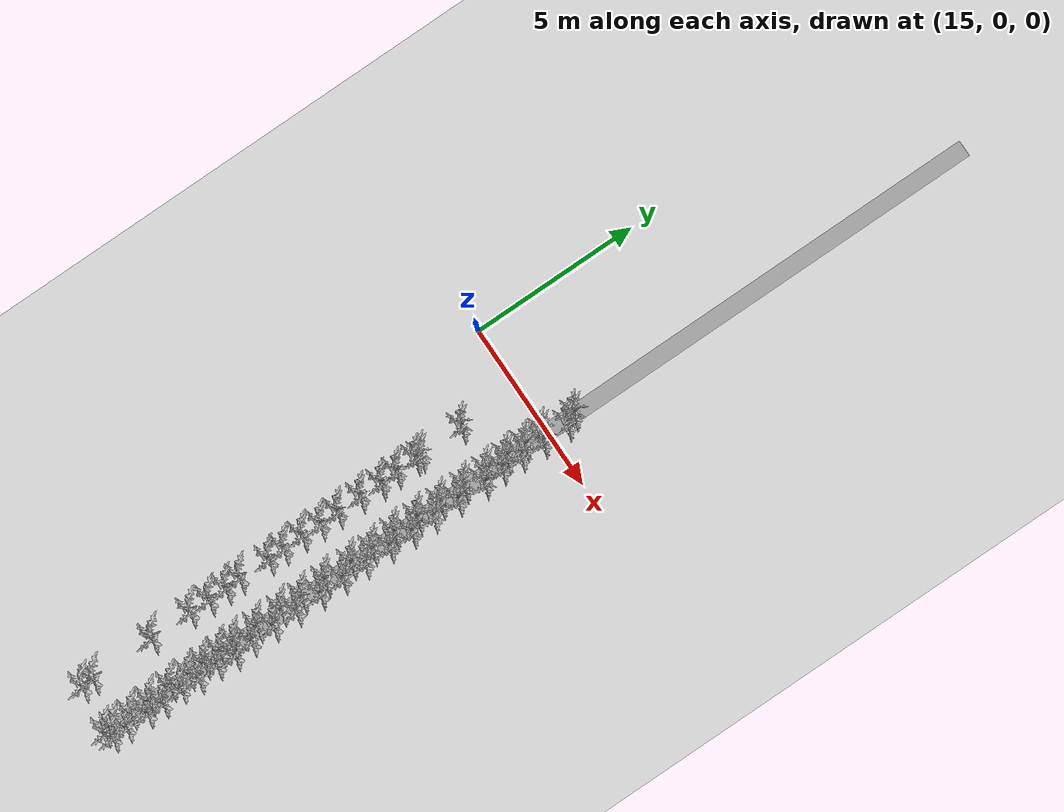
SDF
<sdf version="1.6">
 <world name="default">
  <model name="ground_plane">
   <static>1</static>
   <link name="link">
    <collision name="collision">
     <geometry><plane><normal>0 0 1</normal><size>100 100</size></plane></geometry>
     <surface>
      <contact><collide_bitmask>65535</collide_bitmask></contact>
      <friction><ode><mu>100</mu><mu2>50</mu2></ode></friction>
     </surface>
    </collision>
    <visual name="visual">
     <cast_shadows>0</cast_shadows>
     <geometry><plane><normal>0 0 1</normal><size>100 100</size></plane></geometry>
     <material>
      <script><uri>file://media/materials/scripts/gazebo.material</uri><name>Gazebo/Grey</name></script>
     </material>
    </visual>
   </link>
  </model>
  <model name="plant_base_clone_clone_0_clone_clone">
   <link name="link">
    <inertial>
     <mass>1</mass>
     <inertia>
      <ixx>0.166667</ixx>
      <ixy>0</ixy>
      <ixz>0</ixz>
      <iyy>0.166667</iyy>
      <iyz>0</iyz>
      <izz>0.166667</izz>
     </inertia>
    </inertial>
    <visual name="visual">
     <geometry><box><size>0.484753 27.8593 0.235695</size></box></geometry>
     <material>
      <script><name>Gazebo/Grey</name><uri>file://media/materials/scripts/gazebo.material</uri></script>
     </material>
    </visual>
    <collision name="collision">
     <geometry><box><size>0.484753 27.8593 0.235695</size></box></geometry>
     <surface>
      <friction>
       <ode><mu>1</mu><mu2>1</mu2><fdir1>0 0 0</fdir1><slip1>0</slip1><slip2>0</slip2></ode>
       <torsional>
        <coefficient>1</coefficient>
        <patch_radius>0</patch_radius>
        <surface_radius>0</surface_radius>
        <use_patch_radius>1</use_patch_radius>
        <ode><slip>0</slip></ode>
       </torsional>
      </friction>
      <bounce><restitution_coefficient>0</restitution_coefficient><threshold>1e+06</threshold></bounce>
      <contact>
       <collide_without_contact>0</collide_without_contact>
       <collide_without_contact_bitmask>1</collide_without_contact_bitmask>
       <collide_bitmask>1</collide_bitmask>
       <ode>
        <soft_cfm>0</soft_cfm>
        <soft_erp>0.2</soft_erp>
        <kp>1e+13</kp>
        <kd>1</kd>
        <max_vel>0.01</max_vel>
        <min_depth>0</min_depth>
       </ode>
       <bullet>
        <split_impulse>1</split_impulse>
        <split_impulse_penetration_threshold>-0.01</split_impulse_penetration_threshold>
        <soft_cfm>0</soft_cfm>
        <soft_erp>0.2</soft_erp>
        <kp>1e+13</kp>
        <kd>1</kd>
       </bullet>
      </contact>
     </surface>
    </collision>
   </link>
   <static>1</static>
   <pose>18.2947 -0.361854 0.134309 0 -0 0</pose>
  </model>
  <model name="tomato_plant_medium_42">
   <static>1</static>
   <link name="link">
    <collision name="collision">
     <geometry>
      <mesh><scale>5e-06 5e-06 6e-06</scale><uri>model://tomato_plant_medium/meshes/tomato-plant.dae</uri></mesh>
     </geometry>
    </collision>
    <visual name="visual">
     <geometry>
      <mesh><scale>5e-06 5e-06 6e-06</scale><uri>model://tomato_plant_medium/meshes/tomato-plant.dae</uri></mesh>
     </geometry>
    </visual>
   </link>
   <pose>18.2419 0.881435 0 0 -0 0</pose>
  </model>
  <model name="tomato_plant_medium_43">
   <static>1</static>
   <link name="link">
    <collision name="collision">
     <geometry>
      <mesh><scale>5e-06 5e-06 6e-06</scale><uri>model://tomato_plant_medium/meshes/tomato-plant.dae</uri></mesh>
     </geometry>
    </collision>
    <visual name="visual">
     <geometry>
      <mesh><scale>5e-06 5e-06 6e-06</scale><uri>model://tomato_plant_medium/meshes/tomato-plant.dae</uri></mesh>
     </geometry>
    </visual>
   </link>
   <pose>18.3636 0.581403 0 0 -0 0</pose>
  </model>
  <model name="tomato_plant_medium_44">
   <static>1</static>
   <link name="link">
    <collision name="collision">
     <geometry>
      <mesh><scale>5e-06 5e-06 6e-06</scale><uri>model://tomato_plant_medium/meshes/tomato-plant.dae</uri></mesh>
     </geometry>
    </collision>
    <visual name="visual">
     <geometry>
      <mesh><scale>5e-06 5e-06 6e-06</scale><uri>model://tomato_plant_medium/meshes/tomato-plant.dae</uri></mesh>
     </geometry>
    </visual>
   </link>
   <pose>18.1724 -0.08934 0 0 -0 0</pose>
  </model>
  <model name="tomato_plant_medium_45">
   <static>1</static>
   <link name="link">
    <collision name="collision">
     <geometry>
      <mesh><scale>5e-06 5e-06 6e-06</scale><uri>model://tomato_plant_medium/meshes/tomato-plant.dae</uri></mesh>
     </geometry>
    </collision>
    <visual name="visual">
     <geometry>
      <mesh><scale>5e-06 5e-06 6e-06</scale><uri>model://tomato_plant_medium/meshes/tomato-plant.dae</uri></mesh>
     </geometry>
    </visual>
   </link>
   <pose>18.3746 -0.203796 0 0 -0 0</pose>
  </model>
  <model name="tomato_plant_medium_46">
   <static>1</static>
   <link name="link">
    <collision name="collision">
     <geometry>
      <mesh><scale>5e-06 5e-06 6e-06</scale><uri>model://tomato_plant_medium/meshes/tomato-plant.dae</uri></mesh>
     </geometry>
    </collision>
    <visual name="visual">
     <geometry>
      <mesh><scale>5e-06 5e-06 6e-06</scale><uri>model://tomato_plant_medium/meshes/tomato-plant.dae</uri></mesh>
     </geometry>
    </visual>
   </link>
   <pose>18.1923 -0.664019 0 0 -0 0</pose>
  </model>
  <model name="tomato_plant_small_13">
   <static>1</static>
   <link name="link">
    <collision name="collision">
     <geometry>
      <mesh><scale>5e-06 5e-06 5e-06</scale><uri>model://tomato_plant_small/meshes/tomato-plant.dae</uri></mesh>
     </geometry>
    </collision>
    <visual name="visual">
     <geometry>
      <mesh><scale>5e-06 5e-06 5e-06</scale><uri>model://tomato_plant_small/meshes/tomato-plant.dae</uri></mesh>
     </geometry>
    </visual>
   </link>
   <pose>18.3563 -0.904807 0 0 -0 0</pose>
  </model>
  <model name="tomato_plant_medium_47">
   <static>1</static>
   <link name="link">
    <collision name="collision">
     <geometry>
      <mesh><scale>5e-06 5e-06 6e-06</scale><uri>model://tomato_plant_medium/meshes/tomato-plant.dae</uri></mesh>
     </geometry>
    </collision>
    <visual name="visual">
     <geometry>
      <mesh><scale>5e-06 5e-06 6e-06</scale><uri>model://tomato_plant_medium/meshes/tomato-plant.dae</uri></mesh>
     </geometry>
    </visual>
   </link>
   <pose>18.1771 -1.24651 0 0 -0 0</pose>
  </model>
  <model name="tomato_plant_medium_48">
   <static>1</static>
   <link name="link">
    <collision name="collision">
     <geometry>
      <mesh><scale>5e-06 5e-06 6e-06</scale><uri>model://tomato_plant_medium/meshes/tomato-plant.dae</uri></mesh>
     </geometry>
    </collision>
    <visual name="visual">
     <geometry>
      <mesh><scale>5e-06 5e-06 6e-06</scale><uri>model://tomato_plant_medium/meshes/tomato-plant.dae</uri></mesh>
     </geometry>
    </visual>
   </link>
   <pose>18.3478 -1.51642 0 0 -0 0</pose>
  </model>
  <model name="tomato_plant_small_14">
   <static>1</static>
   <link name="link">
    <collision name="collision">
     <geometry>
      <mesh><scale>5e-06 5e-06 5e-06</scale><uri>model://tomato_plant_small/meshes/tomato-plant.dae</uri></mesh>
     </geometry>
    </collision>
    <visual name="visual">
     <geometry>
      <mesh><scale>5e-06 5e-06 5e-06</scale><uri>model://tomato_plant_small/meshes/tomato-plant.dae</uri></mesh>
     </geometry>
    </visual>
   </link>
   <pose>18.1795 -1.89966 0 0 -0 0</pose>
  </model>
  <model name="tomato_plant_medium_49">
   <static>1</static>
   <link name="link">
    <collision name="collision">
     <geometry>
      <mesh><scale>5e-06 5e-06 6e-06</scale><uri>model://tomato_plant_medium/meshes/tomato-plant.dae</uri></mesh>
     </geometry>
    </collision>
    <visual name="visual">
     <geometry>
      <mesh><scale>5e-06 5e-06 6e-06</scale><uri>model://tomato_plant_medium/meshes/tomato-plant.dae</uri></mesh>
     </geometry>
    </visual>
   </link>
   <pose>18.4115 -2.1167 0 0 -0 0</pose>
  </model>
  <model name="tomato_plant_medium_50">
   <static>1</static>
   <link name="link">
    <collision name="collision">
     <geometry>
      <mesh><scale>5e-06 5e-06 6e-06</scale><uri>model://tomato_plant_medium/meshes/tomato-plant.dae</uri></mesh>
     </geometry>
    </collision>
    <visual name="visual">
     <geometry>
      <mesh><scale>5e-06 5e-06 6e-06</scale><uri>model://tomato_plant_medium/meshes/tomato-plant.dae</uri></mesh>
     </geometry>
    </visual>
   </link>
   <pose>18.187 -2.61324 0 0 -0 0</pose>
  </model>
  <model name="tomato_plant_medium_51">
   <static>1</static>
   <link name="link">
    <collision name="collision">
     <geometry>
      <mesh><scale>5e-06 5e-06 6e-06</scale><uri>model://tomato_plant_medium/meshes/tomato-plant.dae</uri></mesh>
     </geometry>
    </collision>
    <visual name="visual">
     <geometry>
      <mesh><scale>5e-06 5e-06 6e-06</scale><uri>model://tomato_plant_medium/meshes/tomato-plant.dae</uri></mesh>
     </geometry>
    </visual>
   </link>
   <pose>18.3839 -2.95565 0 0 -0 0</pose>
  </model>
  <model name="tomato_plant_medium_52">
   <static>1</static>
   <link name="link">
    <collision name="collision">
     <geometry>
      <mesh><scale>5e-06 5e-06 6e-06</scale><uri>model://tomato_plant_medium/meshes/tomato-plant.dae</uri></mesh>
     </geometry>
    </collision>
    <visual name="visual">
     <geometry>
      <mesh><scale>5e-06 5e-06 6e-06</scale><uri>model://tomato_plant_medium/meshes/tomato-plant.dae</uri></mesh>
     </geometry>
    </visual>
   </link>
   <pose>18.1875 -3.37366 0 0 -0 0</pose>
  </model>
  <model name="tomato_plant_small_15">
   <static>1</static>
   <link name="link">
    <collision name="collision">
     <geometry>
      <mesh><scale>5e-06 5e-06 5e-06</scale><uri>model://tomato_plant_small/meshes/tomato-plant.dae</uri></mesh>
     </geometry>
    </collision>
    <visual name="visual">
     <geometry>
      <mesh><scale>5e-06 5e-06 5e-06</scale><uri>model://tomato_plant_small/meshes/tomato-plant.dae</uri></mesh>
     </geometry>
    </visual>
   </link>
   <pose>18.3812 -3.75382 0 0 -0 0</pose>
  </model>
  <model name="tomato_plant_big_41">
   <static>1</static>
   <link name="link">
    <collision name="collision">
     <geometry>
      <mesh><scale>5e-06 5e-06 6e-06</scale><uri>model://tomato_plant_big/meshes/tomato-plant.dae</uri></mesh>
     </geometry>
    </collision>
    <visual name="visual">
     <geometry>
      <mesh><scale>5e-06 5e-06 7e-06</scale><uri>model://tomato_plant_big/meshes/tomato-plant.dae</uri></mesh>
     </geometry>
    </visual>
   </link>
   <pose>18.1765 -4.09846 0 0 -0 0</pose>
  </model>
  <model name="tomato_plant_medium_53">
   <static>1</static>
   <link name="link">
    <collision name="collision">
     <geometry>
      <mesh><scale>5e-06 5e-06 6e-06</scale><uri>model://tomato_plant_medium/meshes/tomato-plant.dae</uri></mesh>
     </geometry>
    </collision>
    <visual name="visual">
     <geometry>
      <mesh><scale>5e-06 5e-06 6e-06</scale><uri>model://tomato_plant_medium/meshes/tomato-plant.dae</uri></mesh>
     </geometry>
    </visual>
   </link>
   <pose>18.4013 -4.45258 0 0 -0 0</pose>
  </model>
  <model name="tomato_plant_medium_54">
   <static>1</static>
   <link name="link">
    <collision name="collision">
     <geometry>
      <mesh><scale>5e-06 5e-06 6e-06</scale><uri>model://tomato_plant_medium/meshes/tomato-plant.dae</uri></mesh>
     </geometry>
    </collision>
    <visual name="visual">
     <geometry>
      <mesh><scale>5e-06 5e-06 6e-06</scale><uri>model://tomato_plant_medium/meshes/tomato-plant.dae</uri></mesh>
     </geometry>
    </visual>
   </link>
   <pose>18.1616 -4.84131 0 0 -0 0</pose>
  </model>
  <model name="tomato_plant_medium_55">
   <static>1</static>
   <link name="link">
    <collision name="collision">
     <geometry>
      <mesh><scale>5e-06 5e-06 6e-06</scale><uri>model://tomato_plant_medium/meshes/tomato-plant.dae</uri></mesh>
     </geometry>
    </collision>
    <visual name="visual">
     <geometry>
      <mesh><scale>5e-06 5e-06 6e-06</scale><uri>model://tomato_plant_medium/meshes/tomato-plant.dae</uri></mesh>
     </geometry>
    </visual>
   </link>
   <pose>18.3872 -5.16005 0 0 -0 0</pose>
  </model>
  <model name="tomato_plant_medium_56">
   <static>1</static>
   <link name="link">
    <collision name="collision">
     <geometry>
      <mesh><scale>5e-06 5e-06 6e-06</scale><uri>model://tomato_plant_medium/meshes/tomato-plant.dae</uri></mesh>
     </geometry>
    </collision>
    <visual name="visual">
     <geometry>
      <mesh><scale>5e-06 5e-06 6e-06</scale><uri>model://tomato_plant_medium/meshes/tomato-plant.dae</uri></mesh>
     </geometry>
    </visual>
   </link>
   <pose>18.1986 -5.57139 0 0 -0 0</pose>
  </model>
  <model name="tomato_plant_small_16">
   <static>1</static>
   <link name="link">
    <collision name="collision">
     <geometry>
      <mesh><scale>5e-06 5e-06 5e-06</scale><uri>model://tomato_plant_small/meshes/tomato-plant.dae</uri></mesh>
     </geometry>
    </collision>
    <visual name="visual">
     <geometry>
      <mesh><scale>5e-06 5e-06 5e-06</scale><uri>model://tomato_plant_small/meshes/tomato-plant.dae</uri></mesh>
     </geometry>
    </visual>
   </link>
   <pose>18.3716 -5.95526 0 0 -0 0</pose>
  </model>
  <model name="tomato_plant_medium_57">
   <static>1</static>
   <link name="link">
    <collision name="collision">
     <geometry>
      <mesh><scale>5e-06 5e-06 6e-06</scale><uri>model://tomato_plant_medium/meshes/tomato-plant.dae</uri></mesh>
     </geometry>
    </collision>
    <visual name="visual">
     <geometry>
      <mesh><scale>5e-06 5e-06 6e-06</scale><uri>model://tomato_plant_medium/meshes/tomato-plant.dae</uri></mesh>
     </geometry>
    </visual>
   </link>
   <pose>18.1874 -6.24858 0 0 -0 0</pose>
  </model>
  <model name="tomato_plant_medium_58">
   <static>1</static>
   <link name="link">
    <collision name="collision">
     <geometry>
      <mesh><scale>5e-06 5e-06 6e-06</scale><uri>model://tomato_plant_medium/meshes/tomato-plant.dae</uri></mesh>
     </geometry>
    </collision>
    <visual name="visual">
     <geometry>
      <mesh><scale>5e-06 5e-06 6e-06</scale><uri>model://tomato_plant_medium/meshes/tomato-plant.dae</uri></mesh>
     </geometry>
    </visual>
   </link>
   <pose>18.3864 -6.65812 0 0 -0 0</pose>
  </model>
  <model name="tomato_plant_medium_59">
   <static>1</static>
   <link name="link">
    <collision name="collision">
     <geometry>
      <mesh><scale>5e-06 5e-06 6e-06</scale><uri>model://tomato_plant_medium/meshes/tomato-plant.dae</uri></mesh>
     </geometry>
    </collision>
    <visual name="visual">
     <geometry>
      <mesh><scale>5e-06 5e-06 6e-06</scale><uri>model://tomato_plant_medium/meshes/tomato-plant.dae</uri></mesh>
     </geometry>
    </visual>
   </link>
   <pose>18.1717 -7.06619 0 0 -0 0</pose>
  </model>
  <model name="tomato_plant_medium_60">
   <static>1</static>
   <link name="link">
    <collision name="collision">
     <geometry>
      <mesh><scale>5e-06 5e-06 6e-06</scale><uri>model://tomato_plant_medium/meshes/tomato-plant.dae</uri></mesh>
     </geometry>
    </collision>
    <visual name="visual">
     <geometry>
      <mesh><scale>5e-06 5e-06 6e-06</scale><uri>model://tomato_plant_medium/meshes/tomato-plant.dae</uri></mesh>
     </geometry>
    </visual>
   </link>
   <pose>18.3824 -7.38035 0 0 -0 0</pose>
  </model>
  <model name="tomato_plant_medium_61">
   <static>1</static>
   <link name="link">
    <collision name="collision">
     <geometry>
      <mesh><scale>5e-06 5e-06 6e-06</scale><uri>model://tomato_plant_medium/meshes/tomato-plant.dae</uri></mesh>
     </geometry>
    </collision>
    <visual name="visual">
     <geometry>
      <mesh><scale>5e-06 5e-06 6e-06</scale><uri>model://tomato_plant_medium/meshes/tomato-plant.dae</uri></mesh>
     </geometry>
    </visual>
   </link>
   <pose>18.1994 -7.83506 0 0 -0 0</pose>
  </model>
  <model name="tomato_plant_medium_62">
   <static>1</static>
   <link name="link">
    <collision name="collision">
     <geometry>
      <mesh><scale>5e-06 5e-06 6e-06</scale><uri>model://tomato_plant_medium/meshes/tomato-plant.dae</uri></mesh>
     </geometry>
    </collision>
    <visual name="visual">
     <geometry>
      <mesh><scale>5e-06 5e-06 6e-06</scale><uri>model://tomato_plant_medium/meshes/tomato-plant.dae</uri></mesh>
     </geometry>
    </visual>
   </link>
   <pose>18.4013 -8.15736 0 0 -0 0</pose>
  </model>
  <model name="tomato_plant_medium_63">
   <static>1</static>
   <link name="link">
    <collision name="collision">
     <geometry>
      <mesh><scale>5e-06 5e-06 6e-06</scale><uri>model://tomato_plant_medium/meshes/tomato-plant.dae</uri></mesh>
     </geometry>
    </collision>
    <visual name="visual">
     <geometry>
      <mesh><scale>5e-06 5e-06 6e-06</scale><uri>model://tomato_plant_medium/meshes/tomato-plant.dae</uri></mesh>
     </geometry>
    </visual>
   </link>
   <pose>18.1757 -8.48595 0 0 -0 0</pose>
  </model>
  <model name="tomato_plant_medium_64">
   <static>1</static>
   <link name="link">
    <collision name="collision">
     <geometry>
      <mesh><scale>5e-06 5e-06 6e-06</scale><uri>model://tomato_plant_medium/meshes/tomato-plant.dae</uri></mesh>
     </geometry>
    </collision>
    <visual name="visual">
     <geometry>
      <mesh><scale>5e-06 5e-06 6e-06</scale><uri>model://tomato_plant_medium/meshes/tomato-plant.dae</uri></mesh>
     </geometry>
    </visual>
   </link>
   <pose>18.3962 -8.89016 0 0 -0 0</pose>
  </model>
  <model name="tomato_plant_big_42">
   <static>1</static>
   <link name="link">
    <collision name="collision">
     <geometry>
      <mesh><scale>5e-06 5e-06 6e-06</scale><uri>model://tomato_plant_big/meshes/tomato-plant.dae</uri></mesh>
     </geometry>
    </collision>
    <visual name="visual">
     <geometry>
      <mesh><scale>5e-06 5e-06 7e-06</scale><uri>model://tomato_plant_big/meshes/tomato-plant.dae</uri></mesh>
     </geometry>
    </visual>
   </link>
   <pose>18.1735 -9.2315 0 0 -0 0</pose>
  </model>
  <model name="tomato_plant_medium_65">
   <static>1</static>
   <link name="link">
    <collision name="collision">
     <geometry>
      <mesh><scale>5e-06 5e-06 6e-06</scale><uri>model://tomato_plant_medium/meshes/tomato-plant.dae</uri></mesh>
     </geometry>
    </collision>
    <visual name="visual">
     <geometry>
      <mesh><scale>5e-06 5e-06 6e-06</scale><uri>model://tomato_plant_medium/meshes/tomato-plant.dae</uri></mesh>
     </geometry>
    </visual>
   </link>
   <pose>18.4084 -9.59475 0 0 -0 0</pose>
  </model>
  <model name="tomato_plant_medium_66">
   <static>1</static>
   <link name="link">
    <collision name="collision">
     <geometry>
      <mesh><scale>5e-06 5e-06 6e-06</scale><uri>model://tomato_plant_medium/meshes/tomato-plant.dae</uri></mesh>
     </geometry>
    </collision>
    <visual name="visual">
     <geometry>
      <mesh><scale>5e-06 5e-06 6e-06</scale><uri>model://tomato_plant_medium/meshes/tomato-plant.dae</uri></mesh>
     </geometry>
    </visual>
   </link>
   <pose>18.1602 -9.99101 0 0 -0 0</pose>
  </model>
  <model name="tomato_plant_medium_67">
   <static>1</static>
   <link name="link">
    <collision name="collision">
     <geometry>
      <mesh><scale>5e-06 5e-06 6e-06</scale><uri>model://tomato_plant_medium/meshes/tomato-plant.dae</uri></mesh>
     </geometry>
    </collision>
    <visual name="visual">
     <geometry>
      <mesh><scale>5e-06 5e-06 6e-06</scale><uri>model://tomato_plant_medium/meshes/tomato-plant.dae</uri></mesh>
     </geometry>
    </visual>
   </link>
   <pose>18.4562 -10.1662 0 0 -0 0</pose>
  </model>
  <model name="tomato_plant_medium_68">
   <static>1</static>
   <link name="link">
    <collision name="collision">
     <geometry>
      <mesh><scale>5e-06 5e-06 6e-06</scale><uri>model://tomato_plant_medium/meshes/tomato-plant.dae</uri></mesh>
     </geometry>
    </collision>
    <visual name="visual">
     <geometry>
      <mesh><scale>5e-06 5e-06 6e-06</scale><uri>model://tomato_plant_medium/meshes/tomato-plant.dae</uri></mesh>
     </geometry>
    </visual>
   </link>
   <pose>18.1638 -10.4294 0 0 -0 0</pose>
  </model>
  <model name="tomato_plant_medium_69">
   <static>1</static>
   <link name="link">
    <collision name="collision">
     <geometry>
      <mesh><scale>5e-06 5e-06 6e-06</scale><uri>model://tomato_plant_medium/meshes/tomato-plant.dae</uri></mesh>
     </geometry>
    </collision>
    <visual name="visual">
     <geometry>
      <mesh><scale>5e-06 5e-06 6e-06</scale><uri>model://tomato_plant_medium/meshes/tomato-plant.dae</uri></mesh>
     </geometry>
    </visual>
   </link>
   <pose>18.3947 -10.7029 0 0 -0 0</pose>
  </model>
  <model name="tomato_plant_medium_70">
   <static>1</static>
   <link name="link">
    <collision name="collision">
     <geometry>
      <mesh><scale>5e-06 5e-06 6e-06</scale><uri>model://tomato_plant_medium/meshes/tomato-plant.dae</uri></mesh>
     </geometry>
    </collision>
    <visual name="visual">
     <geometry>
      <mesh><scale>5e-06 5e-06 6e-06</scale><uri>model://tomato_plant_medium/meshes/tomato-plant.dae</uri></mesh>
     </geometry>
    </visual>
   </link>
   <pose>18.1822 -10.9616 0 0 -0 0</pose>
  </model>
  <model name="tomato_plant_medium_71">
   <static>1</static>
   <link name="link">
    <collision name="collision">
     <geometry>
      <mesh><scale>5e-06 5e-06 6e-06</scale><uri>model://tomato_plant_medium/meshes/tomato-plant.dae</uri></mesh>
     </geometry>
    </collision>
    <visual name="visual">
     <geometry>
      <mesh><scale>5e-06 5e-06 6e-06</scale><uri>model://tomato_plant_medium/meshes/tomato-plant.dae</uri></mesh>
     </geometry>
    </visual>
   </link>
   <pose>18.4186 -11.3116 0 0 -0 0</pose>
  </model>
  <model name="tomato_plant_small_17">
   <static>1</static>
   <link name="link">
    <collision name="collision">
     <geometry>
      <mesh><scale>5e-06 5e-06 5e-06</scale><uri>model://tomato_plant_small/meshes/tomato-plant.dae</uri></mesh>
     </geometry>
    </collision>
    <visual name="visual">
     <geometry>
      <mesh><scale>5e-06 5e-06 5e-06</scale><uri>model://tomato_plant_small/meshes/tomato-plant.dae</uri></mesh>
     </geometry>
    </visual>
   </link>
   <pose>18.2049 -11.4926 0 0 -0 0</pose>
  </model>
  <model name="tomato_plant_medium_72">
   <static>1</static>
   <link name="link">
    <collision name="collision">
     <geometry>
      <mesh><scale>5e-06 5e-06 6e-06</scale><uri>model://tomato_plant_medium/meshes/tomato-plant.dae</uri></mesh>
     </geometry>
    </collision>
    <visual name="visual">
     <geometry>
      <mesh><scale>5e-06 5e-06 6e-06</scale><uri>model://tomato_plant_medium/meshes/tomato-plant.dae</uri></mesh>
     </geometry>
    </visual>
   </link>
   <pose>18.3913 -11.8513 0 0 -0 0</pose>
  </model>
  <model name="tomato_plant_big_43">
   <static>1</static>
   <link name="link">
    <collision name="collision">
     <geometry>
      <mesh><scale>5e-06 5e-06 6e-06</scale><uri>model://tomato_plant_big/meshes/tomato-plant.dae</uri></mesh>
     </geometry>
    </collision>
    <visual name="visual">
     <geometry>
      <mesh><scale>5e-06 5e-06 7e-06</scale><uri>model://tomato_plant_big/meshes/tomato-plant.dae</uri></mesh>
     </geometry>
    </visual>
   </link>
   <pose>18.1796 -12.019 0 0 -0 0</pose>
  </model>
  <model name="tomato_plant_medium_73">
   <static>1</static>
   <link name="link">
    <collision name="collision">
     <geometry>
      <mesh><scale>5e-06 5e-06 6e-06</scale><uri>model://tomato_plant_medium/meshes/tomato-plant.dae</uri></mesh>
     </geometry>
    </collision>
    <visual name="visual">
     <geometry>
      <mesh><scale>5e-06 5e-06 6e-06</scale><uri>model://tomato_plant_medium/meshes/tomato-plant.dae</uri></mesh>
     </geometry>
    </visual>
   </link>
   <pose>18.4297 -12.4591 0 0 -0 0</pose>
  </model>
  <model name="tomato_plant_medium_74">
   <static>1</static>
   <link name="link">
    <collision name="collision">
     <geometry>
      <mesh><scale>5e-06 5e-06 6e-06</scale><uri>model://tomato_plant_medium/meshes/tomato-plant.dae</uri></mesh>
     </geometry>
    </collision>
    <visual name="visual">
     <geometry>
      <mesh><scale>5e-06 5e-06 6e-06</scale><uri>model://tomato_plant_medium/meshes/tomato-plant.dae</uri></mesh>
     </geometry>
    </visual>
   </link>
   <pose>18.1947 -12.7246 0 0 -0 0</pose>
  </model>
  <model name="tomato_plant_small_18">
   <static>1</static>
   <link name="link">
    <collision name="collision">
     <geometry>
      <mesh><scale>5e-06 5e-06 5e-06</scale><uri>model://tomato_plant_small/meshes/tomato-plant.dae</uri></mesh>
     </geometry>
    </collision>
    <visual name="visual">
     <geometry>
      <mesh><scale>5e-06 5e-06 5e-06</scale><uri>model://tomato_plant_small/meshes/tomato-plant.dae</uri></mesh>
     </geometry>
    </visual>
   </link>
   <pose>18.4263 -12.9835 0 0 -0 0</pose>
  </model>
  <model name="tomato_plant_small_19">
   <static>1</static>
   <link name="link">
    <collision name="collision">
     <geometry>
      <mesh><scale>5e-06 5e-06 5e-06</scale><uri>model://tomato_plant_small/meshes/tomato-plant.dae</uri></mesh>
     </geometry>
    </collision>
    <visual name="visual">
     <geometry>
      <mesh><scale>5e-06 5e-06 5e-06</scale><uri>model://tomato_plant_small/meshes/tomato-plant.dae</uri></mesh>
     </geometry>
    </visual>
   </link>
   <pose>18.2077 -13.3568 0 0 -0 0</pose>
  </model>
  <model name="tomato_plant_small_20">
   <static>1</static>
   <link name="link">
    <collision name="collision">
     <geometry>
      <mesh><scale>5e-06 5e-06 5e-06</scale><uri>model://tomato_plant_small/meshes/tomato-plant.dae</uri></mesh>
     </geometry>
    </collision>
    <visual name="visual">
     <geometry>
      <mesh><scale>5e-06 5e-06 5e-06</scale><uri>model://tomato_plant_small/meshes/tomato-plant.dae</uri></mesh>
     </geometry>
    </visual>
   </link>
   <pose>18.4249 -13.6591 0 0 -0 0</pose>
  </model>
  <model name="tomato_plant_small_21">
   <static>1</static>
   <link name="link">
    <collision name="collision">
     <geometry>
      <mesh><scale>5e-06 5e-06 5e-06</scale><uri>model://tomato_plant_small/meshes/tomato-plant.dae</uri></mesh>
     </geometry>
    </collision>
    <visual name="visual">
     <geometry>
      <mesh><scale>5e-06 5e-06 5e-06</scale><uri>model://tomato_plant_small/meshes/tomato-plant.dae</uri></mesh>
     </geometry>
    </visual>
   </link>
   <pose>18.2251 -13.9419 0 0 -0 0</pose>
  </model>
  <model name="tomato_plant_small_22">
   <static>1</static>
   <link name="link">
    <collision name="collision">
     <geometry>
      <mesh><scale>5e-06 5e-06 5e-06</scale><uri>model://tomato_plant_small/meshes/tomato-plant.dae</uri></mesh>
     </geometry>
    </collision>
    <visual name="visual">
     <geometry>
      <mesh><scale>5e-06 5e-06 5e-06</scale><uri>model://tomato_plant_small/meshes/tomato-plant.dae</uri></mesh>
     </geometry>
    </visual>
   </link>
   <pose>18.4265 -14.1108 0 0 -0 0</pose>
  </model>
  <model name="tomato_plant_small_23">
   <static>1</static>
   <link name="link">
    <collision name="collision">
     <geometry>
      <mesh><scale>5e-06 5e-06 5e-06</scale><uri>model://tomato_plant_small/meshes/tomato-plant.dae</uri></mesh>
     </geometry>
    </collision>
    <visual name="visual">
     <geometry>
      <mesh><scale>5e-06 5e-06 5e-06</scale><uri>model://tomato_plant_small/meshes/tomato-plant.dae</uri></mesh>
     </geometry>
    </visual>
   </link>
   <pose>18.2097 -14.2112 0 0 -0 0</pose>
  </model>
  <model name="tomato_plant_big_44">
   <static>1</static>
   <link name="link">
    <collision name="collision">
     <geometry>
      <mesh><scale>5e-06 5e-06 6e-06</scale><uri>model://tomato_plant_big/meshes/tomato-plant.dae</uri></mesh>
     </geometry>
    </collision>
    <visual name="visual">
     <geometry>
      <mesh><scale>5e-06 5e-06 7e-06</scale><uri>model://tomato_plant_big/meshes/tomato-plant.dae</uri></mesh>
     </geometry>
    </visual>
   </link>
   <pose>16.8446 -1.78644 0 0 -0 0</pose>
  </model>
  <model name="tomato_plant_small_24">
   <static>1</static>
   <link name="link">
    <collision name="collision">
     <geometry>
      <mesh><scale>5e-06 5e-06 5e-06</scale><uri>model://tomato_plant_small/meshes/tomato-plant.dae</uri></mesh>
     </geometry>
    </collision>
    <visual name="visual">
     <geometry>
      <mesh><scale>5e-06 5e-06 5e-06</scale><uri>model://tomato_plant_small/meshes/tomato-plant.dae</uri></mesh>
     </geometry>
    </visual>
   </link>
   <pose>16.86 -3.11517 0 0 -0 0</pose>
  </model>
  <model name="tomato_plant_big_48">
   <static>1</static>
   <link name="link">
    <collision name="collision">
     <geometry>
      <mesh><scale>5e-06 5e-06 6e-06</scale><uri>model://tomato_plant_big/meshes/tomato-plant.dae</uri></mesh>
     </geometry>
    </collision>
    <visual name="visual">
     <geometry>
      <mesh><scale>5e-06 5e-06 7e-06</scale><uri>model://tomato_plant_big/meshes/tomato-plant.dae</uri></mesh>
     </geometry>
    </visual>
   </link>
   <pose>16.8547 -3.26709 -0 0 -0 0</pose>
  </model>
  <model name="tomato_plant_big_49">
   <static>1</static>
   <link name="link">
    <collision name="collision">
     <geometry>
      <mesh><scale>5e-06 5e-06 6e-06</scale><uri>model://tomato_plant_big/meshes/tomato-plant.dae</uri></mesh>
     </geometry>
    </collision>
    <visual name="visual">
     <geometry>
      <mesh><scale>5e-06 5e-06 7e-06</scale><uri>model://tomato_plant_big/meshes/tomato-plant.dae</uri></mesh>
     </geometry>
    </visual>
   </link>
   <pose>16.8674 -3.88706 0 0 -0 0</pose>
  </model>
  <model name="tomato_plant_big_50">
   <static>1</static>
   <link name="link">
    <collision name="collision">
     <geometry>
      <mesh><scale>5e-06 5e-06 6e-06</scale><uri>model://tomato_plant_big/meshes/tomato-plant.dae</uri></mesh>
     </geometry>
    </collision>
    <visual name="visual">
     <geometry>
      <mesh><scale>5e-06 5e-06 7e-06</scale><uri>model://tomato_plant_big/meshes/tomato-plant.dae</uri></mesh>
     </geometry>
    </visual>
   </link>
   <pose>16.8851 -4.39675 0 0 -0 0</pose>
  </model>
  <model name="tomato_plant_big_52">
   <static>1</static>
   <link name="link">
    <collision name="collision">
     <geometry>
      <mesh><scale>5e-06 5e-06 6e-06</scale><uri>model://tomato_plant_big/meshes/tomato-plant.dae</uri></mesh>
     </geometry>
    </collision>
    <visual name="visual">
     <geometry>
      <mesh><scale>5e-06 5e-06 7e-06</scale><uri>model://tomato_plant_big/meshes/tomato-plant.dae</uri></mesh>
     </geometry>
    </visual>
   </link>
   <pose>16.8601 -5.04047 0 0 -0 0</pose>
  </model>
  <model name="tomato_plant_big_54">
   <static>1</static>
   <link name="link">
    <collision name="collision">
     <geometry>
      <mesh><scale>5e-06 5e-06 6e-06</scale><uri>model://tomato_plant_big/meshes/tomato-plant.dae</uri></mesh>
     </geometry>
    </collision>
    <visual name="visual">
     <geometry>
      <mesh><scale>5e-06 5e-06 7e-06</scale><uri>model://tomato_plant_big/meshes/tomato-plant.dae</uri></mesh>
     </geometry>
    </visual>
   </link>
   <pose>16.8656 -5.76483 0 0 -0 0</pose>
  </model>
  <model name="tomato_plant_medium_76">
   <static>1</static>
   <link name="link">
    <collision name="collision">
     <geometry>
      <mesh><scale>5e-06 5e-06 6e-06</scale><uri>model://tomato_plant_medium/meshes/tomato-plant.dae</uri></mesh>
     </geometry>
    </collision>
    <visual name="visual">
     <geometry>
      <mesh><scale>5e-06 5e-06 6e-06</scale><uri>model://tomato_plant_medium/meshes/tomato-plant.dae</uri></mesh>
     </geometry>
    </visual>
   </link>
   <pose>16.8691 -6.34354 0 0 -0 0</pose>
  </model>
  <model name="tomato_plant_big_56">
   <static>1</static>
   <link name="link">
    <collision name="collision">
     <geometry>
      <mesh><scale>5e-06 5e-06 6e-06</scale><uri>model://tomato_plant_big/meshes/tomato-plant.dae</uri></mesh>
     </geometry>
    </collision>
    <visual name="visual">
     <geometry>
      <mesh><scale>5e-06 5e-06 7e-06</scale><uri>model://tomato_plant_big/meshes/tomato-plant.dae</uri></mesh>
     </geometry>
    </visual>
   </link>
   <pose>16.8542 -6.89615 0 0 -0 0</pose>
  </model>
  <model name="tomato_plant_medium_78">
   <static>1</static>
   <link name="link">
    <collision name="collision">
     <geometry>
      <mesh><scale>5e-06 5e-06 6e-06</scale><uri>model://tomato_plant_medium/meshes/tomato-plant.dae</uri></mesh>
     </geometry>
    </collision>
    <visual name="visual">
     <geometry>
      <mesh><scale>5e-06 5e-06 6e-06</scale><uri>model://tomato_plant_medium/meshes/tomato-plant.dae</uri></mesh>
     </geometry>
    </visual>
   </link>
   <pose>16.861 -7.51458 0 0 -0 0</pose>
  </model>
  <model name="tomato_plant_big_59">
   <static>1</static>
   <link name="link">
    <collision name="collision">
     <geometry>
      <mesh><scale>5e-06 5e-06 6e-06</scale><uri>model://tomato_plant_big/meshes/tomato-plant.dae</uri></mesh>
     </geometry>
    </collision>
    <visual name="visual">
     <geometry>
      <mesh><scale>5e-06 5e-06 7e-06</scale><uri>model://tomato_plant_big/meshes/tomato-plant.dae</uri></mesh>
     </geometry>
    </visual>
   </link>
   <pose>16.8734 -7.97929 0 0 -0 0</pose>
  </model>
  <model name="tomato_plant_big_61">
   <static>1</static>
   <link name="link">
    <collision name="collision">
     <geometry>
      <mesh><scale>5e-06 5e-06 6e-06</scale><uri>model://tomato_plant_big/meshes/tomato-plant.dae</uri></mesh>
     </geometry>
    </collision>
    <visual name="visual">
     <geometry>
      <mesh><scale>5e-06 5e-06 7e-06</scale><uri>model://tomato_plant_big/meshes/tomato-plant.dae</uri></mesh>
     </geometry>
    </visual>
   </link>
   <pose>16.8446 -8.89241 0 0 -0 0</pose>
  </model>
  <model name="tomato_plant_medium_80">
   <static>1</static>
   <link name="link">
    <collision name="collision">
     <geometry>
      <mesh><scale>5e-06 5e-06 6e-06</scale><uri>model://tomato_plant_medium/meshes/tomato-plant.dae</uri></mesh>
     </geometry>
    </collision>
    <visual name="visual">
     <geometry>
      <mesh><scale>5e-06 5e-06 6e-06</scale><uri>model://tomato_plant_medium/meshes/tomato-plant.dae</uri></mesh>
     </geometry>
    </visual>
   </link>
   <pose>16.8615 -9.37359 0 0 -0 0</pose>
  </model>
  <model name="tomato_plant_big_62">
   <static>1</static>
   <link name="link">
    <collision name="collision">
     <geometry>
      <mesh><scale>5e-06 5e-06 6e-06</scale><uri>model://tomato_plant_big/meshes/tomato-plant.dae</uri></mesh>
     </geometry>
    </collision>
    <visual name="visual">
     <geometry>
      <mesh><scale>5e-06 5e-06 7e-06</scale><uri>model://tomato_plant_big/meshes/tomato-plant.dae</uri></mesh>
     </geometry>
    </visual>
   </link>
   <pose>16.8659 -9.8858 0 0 -0 0</pose>
  </model>
  <model name="tomato_plant_medium_82">
   <static>1</static>
   <link name="link">
    <collision name="collision">
     <geometry>
      <mesh><scale>5e-06 5e-06 6e-06</scale><uri>model://tomato_plant_medium/meshes/tomato-plant.dae</uri></mesh>
     </geometry>
    </collision>
    <visual name="visual">
     <geometry>
      <mesh><scale>5e-06 5e-06 6e-06</scale><uri>model://tomato_plant_medium/meshes/tomato-plant.dae</uri></mesh>
     </geometry>
    </visual>
   </link>
   <pose>16.8468 -10.5087 0 0 -0 0</pose>
  </model>
  <model name="tomato_plant_big_65">
   <static>1</static>
   <link name="link">
    <collision name="collision">
     <geometry>
      <mesh><scale>5e-06 5e-06 6e-06</scale><uri>model://tomato_plant_big/meshes/tomato-plant.dae</uri></mesh>
     </geometry>
    </collision>
    <visual name="visual">
     <geometry>
      <mesh><scale>5e-06 5e-06 7e-06</scale><uri>model://tomato_plant_big/meshes/tomato-plant.dae</uri></mesh>
     </geometry>
    </visual>
   </link>
   <pose>16.8568 -11.7061 0 0 -0 0</pose>
  </model>
  <model name="tomato_plant_medium_88">
   <static>1</static>
   <link name="link">
    <collision name="collision">
     <geometry>
      <mesh><scale>5e-06 5e-06 6e-06</scale><uri>model://tomato_plant_medium/meshes/tomato-plant.dae</uri></mesh>
     </geometry>
    </collision>
    <visual name="visual">
     <geometry>
      <mesh><scale>5e-06 5e-06 6e-06</scale><uri>model://tomato_plant_medium/meshes/tomato-plant.dae</uri></mesh>
     </geometry>
    </visual>
   </link>
   <pose>16.8671 -13.6374 0 0 -0 0</pose>
  </model>
  <model name="tomato_plant_small_29">
   <static>1</static>
   <link name="link">
    <collision name="collision">
     <geometry>
      <mesh><scale>5e-06 5e-06 5e-06</scale><uri>model://tomato_plant_small/meshes/tomato-plant.dae</uri></mesh>
     </geometry>
    </collision>
    <visual name="visual">
     <geometry>
      <mesh><scale>5e-06 5e-06 5e-06</scale><uri>model://tomato_plant_small/meshes/tomato-plant.dae</uri></mesh>
     </geometry>
    </visual>
   </link>
   <pose>16.8655 -14.0203 0 0 -0 0</pose>
  </model>
 </world>
</sdf>
